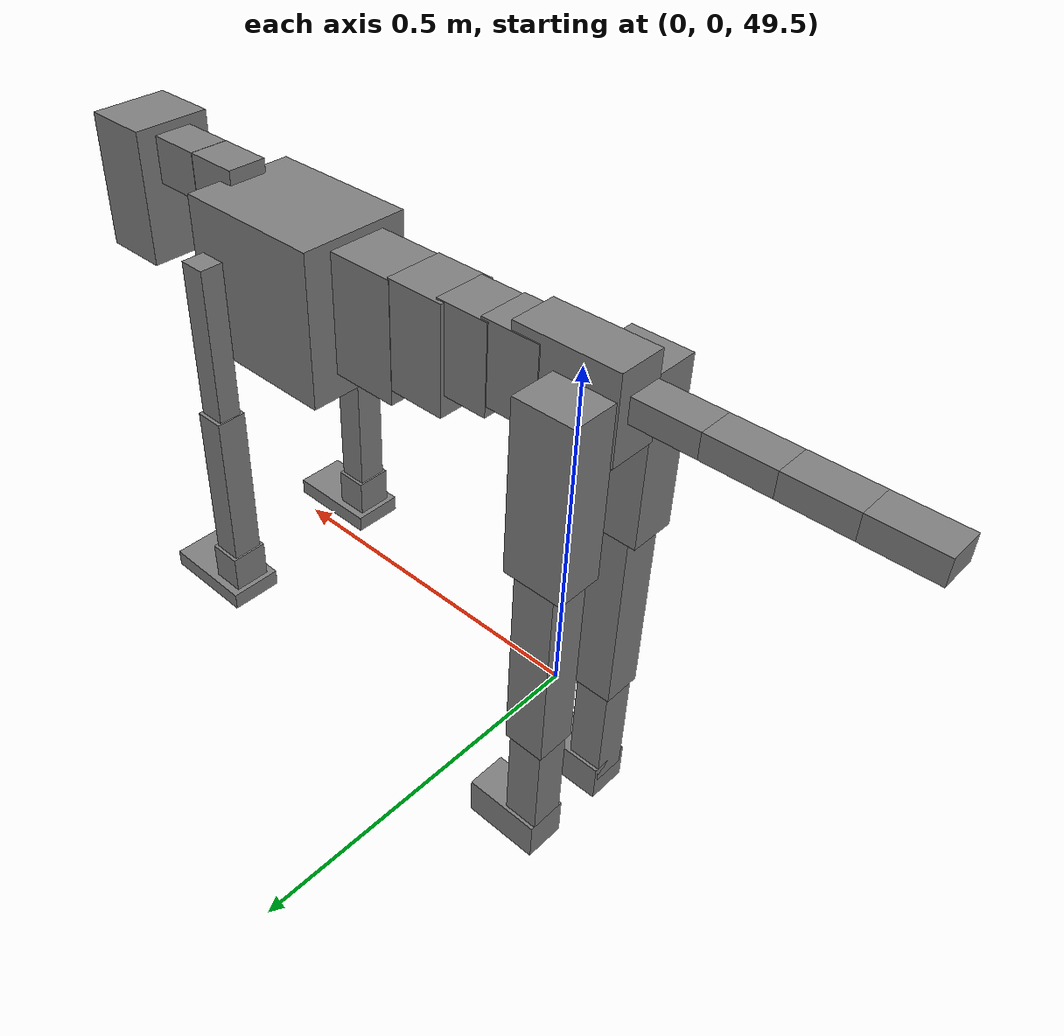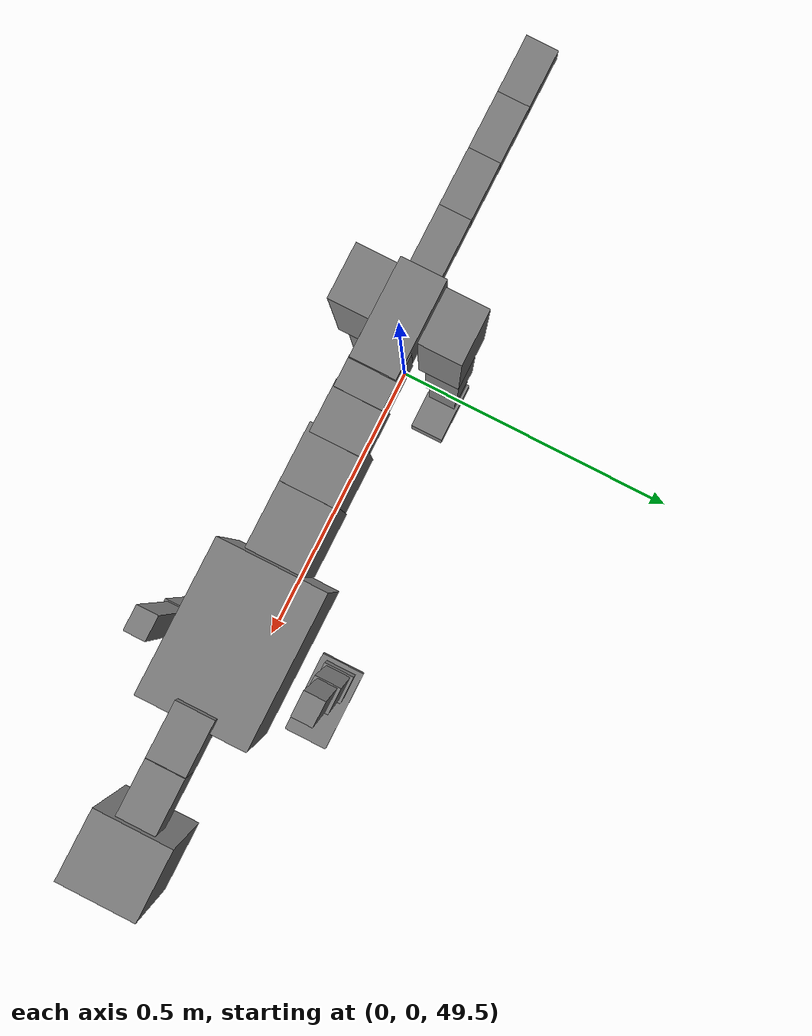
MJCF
<mujoco model="dog">

    <default>
        <joint armature="0.02" stiffness="1" damping="0.2" limited="true"/>
        <geom condim="3" friction="1 0.05 0.05" margin="0.01"/>
        <motor ctrllimited="true" ctrlrange="-1.0 1.0" forcelimited="true" gear="50"/>
    </default>

    <compiler inertiafromgeom="true" angle="radian"/>

    <option timestep="0.016" iterations="50" tolerance="1e-10" solver="Newton" jacobian="dense" cone="pyramidal"/>

    <size nconmax="20000" njmax="60000" nstack="5000000"/>
    <visual>
        <map force="0.1" zfar="30"/>
        <rgba haze="0.15 0.25 0.35 1"/>
        <quality shadowsize="2048"/>
        <global offwidth="800" offheight="800"/>
    </visual>

    <asset>
        <texture type="skybox" builtin="gradient" rgb1="0.3 0.5 0.7" rgb2="0 0 0" width="512" height="512"/>
        <texture name="texplane" type="2d" builtin="checker" rgb1=".2 .3 .4" rgb2=".1 0.15 0.2" width="512" height="512"
                 mark="cross" markrgb=".8 .8 .8"/>
        <texture name="texgeom" type="cube" builtin="flat" mark="cross" width="127" height="1278" rgb1="0.8 0.6 0.4"
                 rgb2="0.8 0.6 0.4" markrgb="1 1 1" random="0.01"/>

        <material name="matplane" reflectance="0.3" texture="texplane" texrepeat="1 1" texuniform="true"/>
        <material name="matgeom" texture="texgeom" texuniform="true" rgba="0.8 0.6 .4 1"/>
    </asset>

    <worldbody>
        <geom name="floor" pos="0 0 0" size="0 0 .25" type="plane" material="matplane" condim="3"/>

        <light directional="false" diffuse=".2 .2 .2" specular="0 0 0" pos="0 0 5" dir="0 0 -1" castshadow="false"/>
        <light mode="targetbodycom" target="torso" directional="false" diffuse=".8 .8 .8" specular="0.3 0.3 0.3"
               pos="0 0 4.0" dir="0 0 -1"/>

        <body name="root" pos="0 0 50">
            <freejoint name="root_1"/>
            <geom type="box" pos="0 0 -0.02" size="0.0774  0.0358  0.063" density="2030"/>

            <body name="spine1" pos="0.054 0 0">
                <joint name="spine1_y" axis="0 1 0" range="0 0.7" limited="true"/>
                <geom type="box" pos="0.02375 0 -0.03" size="0.04375  0.0375  0.05985" density="2030"/>

                <body name="spine2" pos="0.0612 0 0">
                    <joint name="spine2_y" axis="0 1 0" range="-0.15 0.15" limited="true"/>
                    <geom type="box" pos="0.03555  0  -0.04" size="0.04055  0.039  0.06615" density="2030"/>

                    <body name="spine3" pos="0.0730 0 0">
                        <joint name="spine3_y" axis="0 1 0" range="-0.15 0.15" limited="true"/>
                        <geom type="box" pos="0.03555  0  -0.057" size="0.04555  0.0445  0.081" density="2030"/>

                        <body name="spine4" pos="0.0780 0 0">
                            <joint name="spine4_y" axis="0 1 0" range="-0.15 0.15" limited="true"/>
                            <geom type="box" pos="0.05265  0  -0.07" size="0.05265  0.045  0.09135" density="2030"/>

                            <body name="torso" pos="0.1082 0 0">
                                <joint name="torso_y" axis="0 1 0" range="-0.15 0.15" limited="true"/>
                                <geom type="box" pos="0.11925  0  -0.085" size="0.11925  0.085  0.11745"
                                      density="2030"/>

                                <body name="neck1" pos="0.2160  0   0.0180">
                                    <joint name="neck1_y" axis="0 1 0" range="-1.2  -1" limited="true"/>
                                    <geom type="box" pos="0.0423  0  0" size="0.0423  0.03  0.036" density="2325"/>

                                    <body name="neck2" pos="0.0853  0  0">
                                        <joint name="neck2_y" axis="0 1 0" range="0.1  0" limited="true"/>
                                        <geom type="box" pos="0.0423  0  0" size="0.0423  0.03  0.036" density="2325"/>

                                        <body name="head" pos="0.0853  0  0">
                                            <joint name="head_y" axis="0 1 0" range="-0.3  -0.2" limited="true"/>
                                            <geom type="box" pos="0.0531  0  -0.055" size="0.0531  0.06  0.1044"
                                                  density="4030"/>

                                        </body>
                                    </body>
                                </body>

                                <body name="front_shoulder" pos="0.156  0   -0.0480">
                                    <joint name="front_shoulder_y" axis="0 1 0" range="-1 1.5" limited="true"/>
                                    <geom type="box" pos="0 0.13 -0.1070" size="0.0202  0.0173  0.1336" density="1158"/>
                                    <geom type="box" pos="0 -0.13 -0.1070" size="0.0202  0.0173  0.1336"
                                          density="1158"/>

                                    <body name="front_elbow" pos="0  0  -0.2139">
                                        <joint name="front_elbow_y" axis="0 1 0" range="-2 0" limited="true"/>
                                        <geom type="box" pos="0 0.13 -0.1312" size="0.0224  0.0229  0.1312"
                                              density="1081"/>
                                        <geom type="box" pos="0 -0.13 -0.1312" size="0.0224  0.0229  0.1312"
                                              density="1081"/>

                                        <body name="front_wrist" pos="0  0  -0.2624">
                                            <joint name="front_wrist_y" axis="0 1 0" range="-0.2 0" limited="true"/>
                                            <geom type="box" pos="0 0.13 -0.0306" size="0.0253  0.0282  0.0437"
                                                  density="1664"/>
                                            <geom type="box" pos="0 -0.13 -0.0306" size="0.0253  0.0282  0.0437"
                                                  density="1664"/>

                                            <body name="front_finger_end" pos="0  0  -0.0612">
                                                <joint name="front_finger_y" axis="0 1 0" range="-0.4 1"
                                                       limited="true"/>
                                                <geom type="box" pos="0.0399  0.13  0.0019"
                                                      size="0.0732  0.0399  0.0131" density="1515"/>
                                                <geom type="box" pos="0.0399  -0.13  0.0019"
                                                      size="0.0732  0.0399  0.0131" density="1515"/>

                                            </body>

                                        </body>
                                    </body>
                                </body>

                            </body>
                        </body>
                    </body>
                </body>
            </body>

            <body name="back_hip" pos="-0.03 0 -0.018">
                <joint name="back_hip_y" axis="0 1 0" range="-1.5 0.3" limited="true"/>
                <geom type="box" pos="0 0.07 -0.1035" size="0.0442  0.0347  0.1263" density="1154"/>
                <geom type="box" pos="0 -0.07 -0.1035" size="0.0442  0.0347  0.1263" density="1154"/>

                <body name="back_knee" pos="0  0  -0.2070">
                    <joint name="back_knee_y" axis="0 1 0" range="0 2.8" limited="true"/>
                    <geom type="box" pos="0 0.07 -0.1476" size="0.0306  0.0302  0.1631" density="1227"/>
                    <geom type="box" pos="0 -0.07 -0.1476" size="0.0306  0.0302  0.1631" density="1227"/>

                    <body name="back_ankle" pos="0  0  -0.2952">
                        <joint name="back_ankle_y" axis="0 1 0" range="-2.2 0" limited="true"/>
                        <geom type="box" pos="0 0.07 -0.0910" size="0.0260  0.0260  0.1022" density="1284"/>
                        <geom type="box" pos="0 -0.07 -0.0910" size="0.0260  0.0260  0.1022" density="1284"/>

                        <body name="back_toe_end" pos="0  0  -0.1820">
                            <joint name="back_toe_y" axis="0 1 0" range="-0.4 1" limited="true"/>
                            <geom type="box" pos="0.0312  0.07  -0.0146" size="0.0572  0.0312  0.0296" density="1515"/>
                            <geom type="box" pos="0.0312  -0.07  -0.0146" size="0.0572  0.0312  0.0296" density="1515"/>

                        </body>
                    </body>
                </body>
            </body>

            <body name="tail1" pos="-0.074 0 -0.006">
                <joint name="tail1_y" axis="0 1 0" range="-0.2 0.2" limited="true"/>
                <geom type="box" pos="-0.0536  0  0" size="0.045  0.025  0.0175" density="1587"/>

                <body name="tail2" pos="-0.09 0 0">
                    <joint name="tail2_y" axis="0 1 0" range="-0.2 0.2" limited="true"/>
                    <geom type="box" pos="-0.0536  0  0" size="0.045  0.025  0.0175" density="1587"/>

                    <body name="tail3" pos="-0.09 0 0">
                        <joint name="tail3_y" axis="0 1 0" range="-0.2 0.2" limited="true"/>
                        <geom type="box" pos="-0.0536  0  0" size="0.045  0.025  0.0175" density="1587"/>

                        <body name="tail4" pos="-0.09 0 0">
                            <joint name="tail4_y" axis="0 1 0" range="-0.2 0.2" limited="true"/>
                            <geom type="box" pos="-0.0536  0  0" size="0.045  0.025  0.0175" density="1587"/>

                        </body>
                    </body>
                </body>
            </body>
        </body>
    </worldbody>

    <actuator>
        <motor joint="spine1_y" forcerange="-150 150     "/>
        <motor joint="spine2_y" forcerange="-150 150     "/>
        <motor joint="spine3_y" forcerange="-150 150     "/>
        <motor joint="spine4_y" forcerange="-150 150     "/>
        <motor joint="torso_y" forcerange="-150 150     "/>
        <motor joint="neck1_y" forcerange="-100 100       "/>
        <motor joint="neck2_y" forcerange="-100 100       "/>
        <motor joint="head_y" forcerange="-150 150       "/>
        <motor joint="front_shoulder_y" forcerange="-110.49 104.56"/>
        <motor joint="front_elbow_y" forcerange="-133.19 133.26"/>
        <motor joint="front_wrist_y" forcerange="-147.29 77.92"/>
        <motor joint="front_finger_y" forcerange="-76.81 96.00"/>
        <motor joint="back_hip_y" forcerange="-386.22 275.85"/>
        <motor joint="back_knee_y" forcerange="-350.68 287.91"/>
        <motor joint="back_angle_y" forcerange="-148.58 168.14"/>
        <motor joint="back_toe_y" forcerange="-40.35 129.25"/>
        <motor joint="tail1_y" forcerange="-50 50     "/>
        <motor joint="tail2_y" forcerange="-50 50     "/>
        <motor joint="tail3_y" forcerange="-50 50     "/>
        <motor joint="tail4_y" forcerange="-50 50     "/>
    </actuator>
</mujoco>
